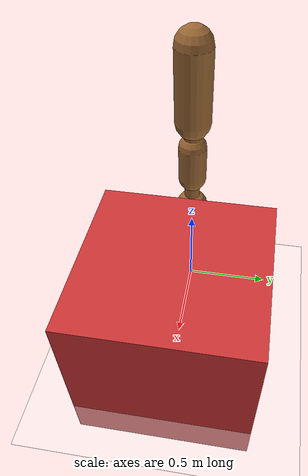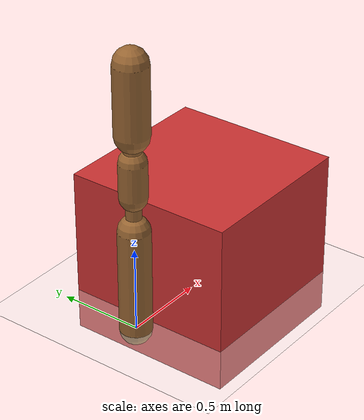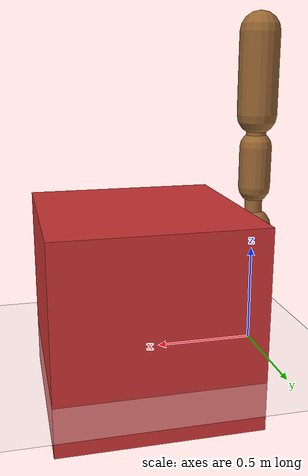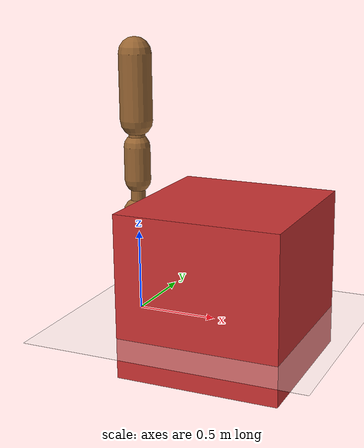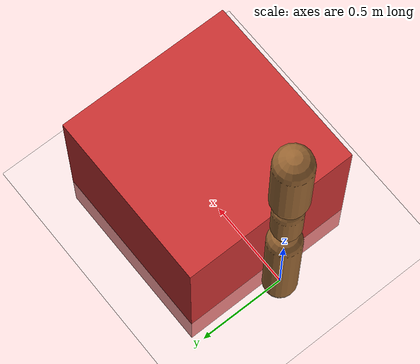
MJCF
<mujoco model="tripo_arm">
  <asset>
    <texture name="skybox" type="skybox" builtin="gradient" rgb1=".2 .3 .4" rgb2="0 0 0" width="800" height="800" mark="random" markrgb="1 1 1" />
    <texture name="grid" type="2d" builtin="checker" rgb1=".2 .1 .2" rgb2=".3 .2 .3" width="300" height="300" mark="edge" markrgb=".3 .2 .3" />
    <material name="grid" texture="grid" texrepeat="1 1" texuniform="true" reflectance=".2" />
  </asset>
  <visual>
    <headlight ambient=".4 .4 .4" diffuse=".8 .8 .8" specular="0 0 0" />
    <map znear=".001" />
  </visual>
  <compiler angle="degree" />
  <option integrator="RK4" timestep="0.01" />
  <default>
    <joint armature="1" damping="5" limited="true" />
    <geom conaffinity="0" condim="3" density="5.0" friction="1.0 0.5 0.5" margin="0.01" rgba=".6 .4 .2 1" />
  </default>
  <worldbody>
    <light cutoff="100" diffuse="1 1 1" dir="0.3 0 -1.3" directional="true" exponent="1" pos="-30 0 130" specular=".1 .1 .1" />
    <geom conaffinity="1" condim="3" name="floor" pos="0 0 0" rgba="1 1 1 1" size="200 200 .125" type="plane" material="grid" />

    <!-- link_0: base, 4.79kg, capsule r=0.093m, z: 0→0.623m -->
    <body name="0" pos="0 0 0">
      <camera name="track" mode="trackcom" pos="2 -3 1.5" xyaxes="1 0 0 0 0.5 1" />
      <geom fromto="0 0 0 0 0 0.623" size="0.093" type="capsule" />

      <!-- joint_0: axis≈Y, z_offset=0.378m -->
      <!-- link_1: 2.86kg, capsule r=0.085m, z: 0→0.218m -->
      <body name="1" pos="0 0 0.378">
        <joint axis="0.2826 0.9590 0.0204" name="1_joint" pos="0 0 0"
               range="-90 90" type="hinge" damping="5" velocity="2.0" />
        <geom fromto="0 0 0 0 0 0.218" size="0.085" type="capsule" />

        <!-- joint_1: axis≈X, z_offset=0.198m -->
        <!-- link_2: 1.15kg, capsule r=0.044m, z: 0→0.274m -->
        <body name="11" pos="0 0 0.198">
          <joint axis="0.8899 -0.4556 -0.0211" name="11_joint" pos="0 0 0"
                 range="-90 90" type="hinge" damping="5" velocity="2.0" />
          <geom fromto="0 0 0 0 0 0.274" size="0.044" type="capsule" />

          <!-- joint_2: axis≈Y, z_offset=0.255m -->
          <!-- link_3: 2.33kg, capsule r=0.080m, z: 0→0.203m -->
          <body name="111" pos="0 0 0.255">
            <joint axis="-0.4686 0.8821 -0.0474" name="111_joint" pos="0 0 0"
                   range="-90 90" type="hinge" damping="5" velocity="2.0" />
            <geom fromto="0 0 0 0 0 0.203" size="0.080" type="capsule" />

            <!-- joint_3: axis=斜め, z_offset=0.183m -->
            <!-- link_4: 0.83kg, capsule r=0.050m, z: 0→0.200m -->
            <body name="1111" pos="0 0 0.183">
              <joint axis="0.6807 -0.6410 -0.3547" name="1111_joint" pos="0 0 0"
                     range="-90 90" type="hinge" damping="3" velocity="2.0" />
              <geom fromto="0 0 0 0 0 0.200" size="0.050" type="capsule" />

              <!-- joint_4: axis≈X, branch1 (link_5), z_offset=0.179m -->
              <!-- link_5: 3.32kg, capsule r=0.091m, z: 0→0.402m -->
              <body name="11111" pos="0 0 0.179">
                <joint axis="0.9998 0.0036 -0.0208" name="11111_joint" pos="0 0 0"
                       range="-28.6 28.6" type="hinge" damping="3" velocity="2.0" />
                <geom fromto="0 0 0 0 0 0.402" size="0.091" type="capsule" />
              </body>

              <!-- joint_5: axis≈-X, branch2 (link_6), z_offset=0.181m -->
              <!-- link_6: 3.63kg, capsule r=0.099m, z: 0→0.398m -->
              <body name="21111" pos="0 0 0.181">
                <joint axis="-0.9997 -0.0030 -0.0239" name="21111_joint" pos="0 0 0"
                       range="-28.6 28.6" type="hinge" damping="3" velocity="2.0" />
                <geom fromto="0 0 0 0 0 0.398" size="0.099" type="capsule" />
              </body>

            </body>
          </body>
        </body>
      </body>
    </body>

    <!-- cube: 1辺 1.0m (half=0.5), x=0.6m, z=0.25m（床面に接する高さ）
         density=2.7 → mass=2.7kg (rrbot_arm と同一設定) -->
    <body name="cube" pos="0.6 0 0.25">
      <joint name="cube_slide"  type="slide" axis="1 0 0" damping="10.0" range="-2 200" />
      <joint name="cube_slide2" type="slide" axis="0 1 0" damping="10.0" range="-100 100" />
      <geom name="cube_geom" type="box" size="0.5 0.5 0.5"
            rgba="0.8 0.2 0.2 1.0" friction="0.5 0.1 0.1"
            density="2.7" contype="1" conaffinity="1" />
    </body>
  </worldbody>

  <actuator>
    <motor ctrllimited="true" ctrlrange="-1.0 1.0" joint="1_joint"     gear="150" name="1_joint" />
    <motor ctrllimited="true" ctrlrange="-1.0 1.0" joint="11_joint"    gear="120" name="11_joint" />
    <motor ctrllimited="true" ctrlrange="-1.0 1.0" joint="111_joint"   gear="100" name="111_joint" />
    <motor ctrllimited="true" ctrlrange="-1.0 1.0" joint="1111_joint"  gear="80"  name="1111_joint" />
    <motor ctrllimited="true" ctrlrange="-1.0 1.0" joint="11111_joint" gear="60"  name="11111_joint" />
    <motor ctrllimited="true" ctrlrange="-1.0 1.0" joint="21111_joint" gear="60"  name="21111_joint" />
  </actuator>
</mujoco>
